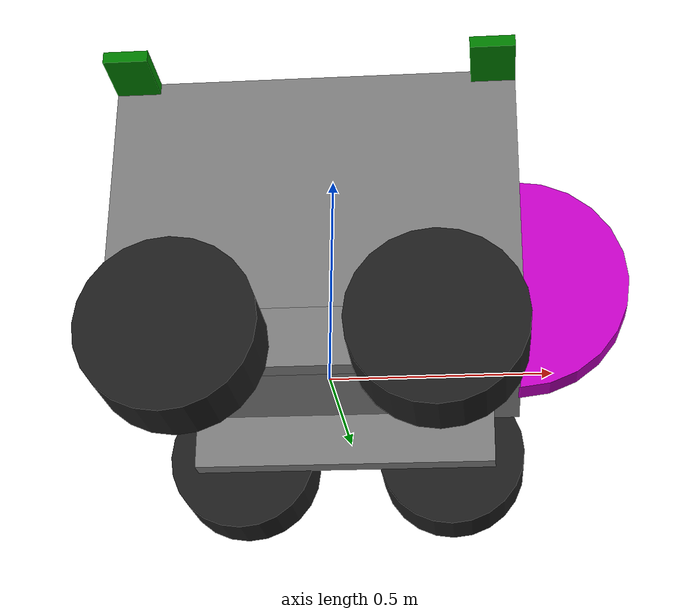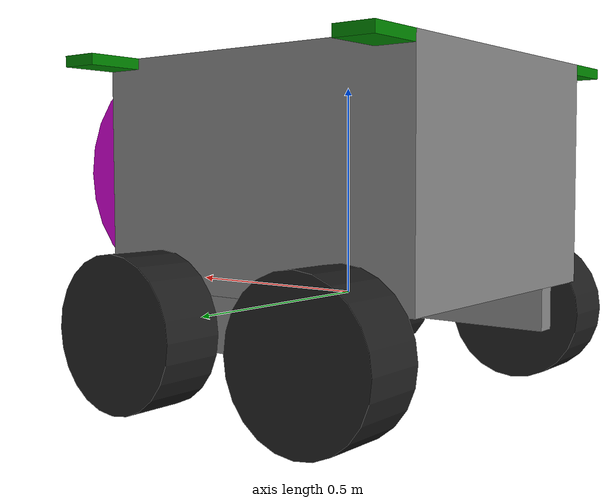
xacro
<?xml version="1.0" encoding="UTF-8"?>
<robot name="bigrdigr" xmlns:xacro="https://www.ros.org/wiki/xacro">
  <xacro:include filename="$(find bigrdigr_description)/urdf/wheel.urdf.xacro"/>
  <xacro:include filename="$(find bigrdigr_description)/urdf/sensors/camera.urdf.xacro"/>
  <xacro:include filename="$(find bigrdigr_description)/urdf/sensors/imu.urdf.xacro"/>
  <xacro:include filename="$(find bigrdigr_description)/urdf/extrusion.urdf.xacro"/>

  <material name="grey">
    <color rgba="0.5 0.5 0.5 1"/>
  </material>
  <material name="dark_grey">
    <color rgba="0.2 0.2 0.2 1"/>
  </material>
  <material name="blue">
    <color rgba="0 0 0.8 1"/>
  </material>
  <material name="red">
    <color rgba="0.8 0 0 1"/>
  </material>
  <material name="green">
    <color rgba="0 0.5 0 1"/>
  </material>
  <material name="purple">
    <color rgba="0.8 0 0.8 1"/>
  </material>
  <material name="orange">
    <color rgba="0.8 0.2 0 1"/>
  </material>
  <!-- Hard coded dimenstions well approximating robot -->
  <!-- red axis = x axis green axis = y blue axis = z -->
  <!-- Equation for inertial matrix of box/prisim -->
  <xacro:macro name="box_inertial_matrix" params="m l w h">
  	<inertia ixx="${(m*(w*w+h*h))/12.0}" ixy = "0.0" ixz = "0.0"
     				 iyy="${(m*(l*l+h*h))/12.0}" iyz = "0.0"
     				 izz="${(m*(l*l+w*w))/12.0}" />
  </xacro:macro>
  <!-- Equation for inertial matrix of cylinder (rotating around y axis) -->
  <xacro:macro name="cylinder_inertia" params="m r h">
  	<inertia ixx="${(m*(3*r*r+h*h))/12.0}" ixy = "0.0" ixz = "0.0"
     				 iyy="${m*r*r/2.0}"			   iyz = "0.0"
     				 izz="${(m*(3*r*r+h*h))/12.0}"  />
  </xacro:macro>

  <!-- Main dimensions: meters, kg, seconds, rads -->
  <xacro:property name="base_height" value="0.54" />
	<xacro:property name="base_length" value="0.864925" />
	<xacro:property name="base_width" value="0.740" />
	<xacro:property name="base_mass" value="72.0" />

  <xacro:property name="leg_height" value="0.127"/>
  <xacro:property name="leg_length" value="0.739775"/>
  <xacro:property name="leg_width" value="0.0508"/>
  <xacro:property name="leg_mass" value="4"/>

  <xacro:property name="leg_x_origin_to_axle" value="${leg_length/2-.10835}" />
	<xacro:property name="leg_y_origin_to_axle" value="0.0254" />
	<xacro:property name="leg_axle_height" value="0.10535" />

  <xacro:property name="drum_width" value="${wheel_width/2}"/>
  <xacro:property name="drum_radius" value="${wheel_radius*1.5}"/>
  <xacro:property name="drum_mass" value="2"/>
  <xacro:property name="drum_y_origin_to_base_origin" value="${base_width/4-drum_width/2}"/>

  <!-- World Origin -->
	<!-- world_origin is a fictitious link(frame) that is on the ground right below base_link origin -->
	<!-- z axis is height -->
	<link name="world_origin"/>
  <gazebo reference="world_origin">
		<turnGravityOff>false</turnGravityOff>
	</gazebo>

	<joint name="base_footprint_joint" type="fixed">
		<origin xyz="0 0 ${leg_height-leg_axle_height}" rpy="0 0 0" />
		<parent link="world_origin" />
		<child link="base_link" />
	</joint>

	<link name="base_link">
		<visual>
			<origin xyz="0 0 ${base_height/2.0}" rpy="0 0 0"/>
			<geometry>
				<box size=" ${base_length} ${base_width} ${base_height}" />
			</geometry>
			<material name="grey"/>
		</visual>

		<collision>
			<origin xyz="0 0 ${base_height/2.0}" rpy="0 0 0"/>
			<geometry>
				<box size="${base_length} ${base_width} ${base_width}"/>
			</geometry>
		</collision>

		<inertial>
			<origin xyz="0 0 ${base_height/2.0}" rpy="0 0 0"/>
			<mass value="${base_mass}"/>
			<box_inertial_matrix m="${base_mass}" h="${base_height}" l="${base_length}" w="${base_width}" />
		</inertial>
	</link>

  <gazebo reference="base_link">
    <material>Gazebo/Grey</material>
    <turnGravityOff>false</turnGravityOff>
  </gazebo>

  <joint name="left_leg_joint" type="fixed">
		<origin xyz="0 ${base_width/2-leg_width/2} ${-leg_height}" rpy="0 0 0" />
		<parent link="base_link" />
		<child link="left_leg" />
	</joint>

	<link name="left_leg">
		<visual>
			<origin xyz="0 0 ${leg_height/2.0}" rpy="0 0 0"/>
			<geometry>
				<box size=" ${leg_length} ${leg_width} ${leg_height}" />
			</geometry>
			<material name="grey"/>
		</visual>

		<collision>
			<origin xyz="0 0 ${leg_height/2.0}" rpy="0 0 0"/>
			<geometry>
				<box size="${leg_length} ${leg_width} ${leg_width}"/>
			</geometry>
		</collision>

		<inertial>
			<origin xyz="0 0 ${leg_height/2.0}" rpy="0 0 0"/>
			<mass value="${leg_mass}"/>
			<box_inertial_matrix m="${leg_mass}" h="${leg_height}" l="${leg_length}" w="${leg_width}" />
		</inertial>
	</link>

  <gazebo reference="left_leg">
    <material>Gazebo/Blue</material>
    <turnGravityOff>false</turnGravityOff>
  </gazebo>

  <joint name="right_leg_joint" type="fixed">
    <origin xyz="0 ${-base_width/2+leg_width/2} ${-leg_height}" rpy="0 0 0" />
    <parent link="base_link" />
    <child link="right_leg" />
  </joint>

  <link name="right_leg">
    <visual>
      <origin xyz="0 0 ${leg_height/2.0}" rpy="0 0 0"/>
      <geometry>
        <box size=" ${leg_length} ${leg_width} ${leg_height}" />
      </geometry>
      <material name="grey"/>
    </visual>

    <collision>
      <origin xyz="0 0 ${leg_height/2.0}" rpy="0 0 0"/>
      <geometry>
        <box size="${leg_length} ${leg_width} ${leg_width}"/>
      </geometry>
    </collision>

    <inertial>
      <origin xyz="0 0 ${leg_height/2.0}" rpy="0 0 0"/>
      <mass value="${leg_mass}"/>
      <box_inertial_matrix m="${leg_mass}" h="${leg_height}" l="${leg_length}" w="${leg_width}" />
    </inertial>
  </link>

  <gazebo reference="right_leg">
    <material>Gazebo/Blue</material>
    <turnGravityOff>false</turnGravityOff>
  </gazebo>

  <wheel prefix="front_left" leg="left_leg" x="1" y="1"/>
  <wheel prefix="front_right" leg="right_leg" x="1" y="-1"/>
  <wheel prefix="back_left" leg="left_leg" x="-1" y="1"/>
  <wheel prefix="back_right" leg="right_leg" x="-1" y="-1"/>

  <extrusion prefix="front_left" x="1" y="1"/>
  <extrusion prefix="front_right" x="1" y="-1"/>
  <extrusion prefix="back_left" x="-1" y="1"/>
  <extrusion prefix="back_right" x="-1" y="-1"/>

  <!-- imu and deca front left, back right. in front of extrusion -->
  <imu number="1"/>

  <joint name="drum_joint" type="prismatic">
		<origin xyz="${base_length/2} ${drum_y_origin_to_base_origin} ${base_height/2}" rpy="0 0 0" />
		<parent link="base_link" />
		<child link="drum" />

    <axis xyz="0 0 1"/>
    <dynamics damping="0.1" friction="0.1"/> <!-- get real Ns/m damping N friction -->
    <limit lower="${-base_length/2}" upper="${base_length/2}" effort="1000" velocity="10"/> <!-- m distance, max effort and vel -->
	</joint>

	<link name="drum">
		<visual>
			<origin xyz="0 ${drum_width/2} 0" rpy="${PI/2.0} 0 0"/>
			<geometry>
				<cylinder length="${drum_width}" radius="${drum_radius}" />
			</geometry>
			<material name="purple"/>
		</visual>

		<collision>
			<origin xyz="0 ${drum_width/2} 0" rpy="${PI/2.0} 0 0"/>
			<geometry>
				<cylinder length="${drum_width}" radius="${drum_radius}" />
			</geometry>
		</collision>

		<inertial>
			<origin xyz="${drum_radius/2} ${drum_width/2} 0" rpy="${PI/2.0} 0 0"/>
			<mass value="${leg_mass}"/>
			<cylinder_inertia m="${drum_mass}" r="${drum_radius}" h="${drum_width}"/>
		</inertial>
	</link>

  <transmission name="drum_trans">
    <type>transmission_interface/SimpleTransmission</type>
    <joint name="drum_joint">
      <hardwareInterface>hardware_interface/PositionJointInterface</hardwareInterface>
    </joint>
    <actuator name="drum_motor">
      <hardwareInterface>hardware_interface/PositionJointInterface</hardwareInterface>
      <mechanicalReduction>1</mechanicalReduction>
    </actuator>
  </transmission>

  <gazebo reference="drum">
    <material>Gazebo/Purple</material>
    <turnGravityOff>false</turnGravityOff>
  </gazebo>

	<gazebo>
	  <plugin name="skid_steer_drive_controller" filename="libgazebo_ros_skid_steer_drive.so">
	    <updateRate>100.0</updateRate>
	    <robotNamespace>/bigrdigr</robotNamespace>
			<commandTopic>cmd_vel</commandTopic>
			<odometryTopic>odometry/wheel</odometryTopic>
	    <leftFrontJoint>front_left_wheel_joint</leftFrontJoint>
	    <rightFrontJoint>front_right_wheel_joint</rightFrontJoint>
	    <leftRearJoint>back_left_wheel_joint</leftRearJoint>
	    <rightRearJoint>back_right_wheel_joint</rightRearJoint>
	    <wheelSeparation>${2*base_width}</wheelSeparation>
	    <wheelDiameter>${2*wheel_radius}</wheelDiameter>
	    <robotBaseFrame>base_link</robotBaseFrame>
	    <torque>20</torque>
	    <broadcastTF>true</broadcastTF>
			<legacyMode>false</legacyMode>
	  </plugin>
	</gazebo>

  <gazebo>
  <plugin name="gazebo_ros_control" filename="libgazebo_ros_control.so">
    <robotNamespace>/bigrdigr</robotNamespace>
    <robotSimType>gazebo_ros_control/DefaultRobotHWSim</robotSimType>
    <legacyMode>false</legacyMode>
  </plugin>
</gazebo>

</robot>

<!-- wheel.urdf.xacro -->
<robot name="bigrdigr" xmlns:xacro="https://www.ros.org/wiki/xacro">
	<!--here are a lot of the measurements. currently, all of them are just dummy values.
	change these later when it will be useful to do so.-->
	<!-- Main dimensions: meters, kg, seconds, rads -->
	<xacro:property name="PI" value="3.141592653589793238462643383279502884197" />
	<xacro:property name="wheel_width" value=".15" />
	<xacro:property name="wheel_radius" value=".18035" />
	<xacro:property name="wheel_mass" value="2" />

	<!--here is a macro for a wheel -->
	<xacro:macro name="wheel_link" params="prefix">
		<link name="${prefix}_wheel">
			<visual>
				<origin xyz="0 0 0" rpy="${PI/2.0} 0 0"/>
	      <geometry>
          <cylinder length="${wheel_width}" radius="${wheel_radius}" />
        </geometry>
        <material name="light_black"/>
			</visual>

	    <collision>
        <origin xyz="0 0 0" rpy="${PI/2.0} 0 0" />
        <geometry>
          <cylinder length="${wheel_width}" radius="${wheel_radius}" />
       	</geometry>
	    </collision>

	    <inertial>
       	<origin xyz="0 0 0" />
      	<mass value="${wheel_mass}" />
       	<cylinder_inertia m="${wheel_mass}" h="${wheel_width}" r="${wheel_radius}"/>
      </inertial>
		</link>
	</xacro:macro>

	<xacro:macro name="wheel_joint" params="prefix leg x y">
		<joint name="${prefix}_wheel_joint" type="continuous">
			<parent link="${leg}" />
			<child 	link="${prefix}_wheel" />
      <origin xyz="${x*leg_x_origin_to_axle} ${y*(wheel_radius/2+leg_width/4)} ${leg_axle_height-leg_height/2}" rpy="0 0 0"/>
      <dynamics damping="0.5" friction="0.1"/> <!-- get real later N*m*s/rad damp N*m friction-->
      <limit effort="1000" velocity="10"/> <!-- simmulate motors, max velocity and max joint effort -->
      <axis xyz="0 1 0"/> <!-- will rotate for y axis -->
    </joint>
	</xacro:macro>

	<xacro:macro name="wheel_gazebo" params="prefix">
		<gazebo reference="${prefix}_wheel">
			<mu1>0.3</mu1>
			<mu2>0.3</mu2>
			<kp>1000000.0</kp>
			<kd>1.0</kd>
			<minDepth>0.001</minDepth>
			<maxVel>1</maxVel>
			<fdir1>1 0 0</fdir1>
			<material>Gazebo/FlatBlack</material>
		</gazebo>
	</xacro:macro>

  <xacro:macro name="wheel_trans" params="prefix">
    <transmission name="${prefix}_wheel_trans">
      <type>transmission_interface/SimpleTransmission</type>
      <joint name="${prefix}_wheel_joint">
        <hardwareInterface>hardware_interface/EffortJointInterface</hardwareInterface>
      </joint>
      <actuator name="${prefix}_wheel_motor">
        <hardwareInterface>EffortJointInterface</hardwareInterface>
        <mechanicalReduction>1</mechanicalReduction>
      </actuator>
    </transmission>
  </xacro:macro>

	<xacro:macro name="wheel" params="prefix leg x y">
		<wheel_link prefix="${prefix}"/>
		<wheel_joint prefix="${prefix}" leg="${leg}" x="${x}" y="${y}"/>
		<wheel_gazebo prefix="${prefix}"/>
		<wheel_trans prefix="${prefix}"/>
	</xacro:macro>

</robot>

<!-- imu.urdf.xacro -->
<robot name="bigrdigr" xmlns:xacro="https://www.ros.org/wiki/xacro">

  <!-- Main dimensions: meters, kg, seconds, rads -->
  <xacro:property name="imu_length" value="0.025" />
  <xacro:property name="imu_width" value="0.025" />
  <xacro:property name="imu_height" value="0.01" />
  <xacro:property name="imu_visual" value="true"/>

  <xacro:macro name="imu_joint" params="number">
    <joint name="imu${number}_joint" type="fixed">
      <axis rpy="0 0 0" xyz="0 1 0"/>
      <parent link="base_link" />
      <child link="imu${number}_link" />
      <origin xyz="0 0 ${base_height + imu_height/2.0}" rpy="0 0 0" />
    </joint>
  </xacro:macro>

  <xacro:macro name="imu_link" params="number">
    <link name="imu${number}_link">
      <visual>
        <origin xyz="0 0 0" rpy="0 0 0" />
        <geometry>
          <box size="${imu_length} ${imu_width} ${imu_height}" />
        </geometry>
        <materal name="blue"/>
      </visual>

      <collision>
        <origin xyz="0 0 0" rpy="0 0 0" />
        <geometry>
          <box size="${imu_length} ${imu_width} ${imu_height}" />
        </geometry>
      </collision>
    </link>
  </xacro:macro>

  <xacro:macro name="imu_gazebo" params="number">
    <gazebo reference="imu${number}_link">
  		<gravity>true</gravity>
  		<sensor type="imu" name="imu${number}">
  			<always_on>true</always_on>
  			<update_rate>100</update_rate>
  			<visualize>${imu_visual}</visualize>
  			<topic>imu_data</topic>
  			<plugin filename="libgazebo_ros_imu_sensor.so" name="imu_plugin">
  				<topicName>imu${number}/data</topicName>
  				<bodyName>imu${number}_link</bodyName>
  				<updateRateHZ>10.0</updateRateHZ>
  				<gaussianNoise>0.0</gaussianNoise>
  				<xyzOffset>0 0 0</xyzOffset>
  				<rpyOffset>0 0 0</rpyOffset>
  				<frameName>imu${number}_link</frameName>
  			</plugin>
  			<pose>0 0 0 0 0 0</pose>
  		</sensor>
  		<material>Gazebo/Blue</material>
  	</gazebo>
  </xacro:macro>

  <xacro:macro name="imu" params="number">
    <imu_joint number="${number}"/>
    <imu_link number="${number}"/>
    <imu_gazebo number="${number}"/>
  </xacro:macro>

</robot>

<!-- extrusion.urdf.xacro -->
<robot name="bigrdigr" xmlns:xacro="https://www.ros.org/wiki/xacro">
  <!-- Main dimensions: meters, kg, seconds, rads -->
  <xacro:property name="extrusion_height" value="0.0254"/>
  <xacro:property name="extrusion_length" value="0.0946"/>
  <xacro:property name="extrusion_width" value="0.13254"/>
  <xacro:property name="extrusion_mass" value="0.5"/>

  <xacro:macro name="extrusion_joint" params="prefix x y">
    <joint name="${prefix}_extrusion_joint" type="fixed">
      <origin xyz="${x*(base_length/2-extrusion_length/2)} ${y*base_width/2} ${base_height-extrusion_height/2}" rpy="0 0 0"/>
      <parent link="base_link"/>
      <child link="${prefix}_extrusion"/>
  	</joint>
  </xacro:macro>

  <xacro:macro name="extrusion_link" params="prefix y">
  	<link name="${prefix}_extrusion">
  		<visual>
  			<origin xyz="0 ${y*extrusion_width/2} 0" rpy="0 0 0"/>
  			<geometry>
  				<box size=" ${extrusion_length} ${extrusion_width} ${extrusion_height}" />
  			</geometry>
  			<material name="green"/>
  		</visual>

  		<collision>
  			<origin xyz="0 ${y*extrusion_width/2} 0" rpy="0 0 0"/>
  			<geometry>
          <box size=" ${extrusion_length} ${extrusion_width} ${extrusion_height}" />
  			</geometry>
  		</collision>

  		<inertial>
  			<origin xyz="0 0 ${leg_height/2.0}" rpy="0 0 0"/>
  			<mass value="${leg_mass}"/>
  			<box_inertial_matrix m="${leg_mass}" h="${leg_height}" l="${leg_length}" w="${leg_width}" />
  		</inertial>
  	</link>
  </xacro:macro>

  <xacro:macro name="extrusion_gazebo" params="prefix">
    <gazebo reference="${prefix}_extrusion">
      <material>Gazebo/Green</material>
      <turnGravityOff>false</turnGravityOff>
    </gazebo>
  </xacro:macro>

  <xacro:macro name="extrusion" params="prefix x y">
    <extrusion_link prefix="${prefix}" y="${y}"/>
    <extrusion_joint prefix="${prefix}" x="${x}" y="${y}"/>
    <extrusion_gazebo prefix="${prefix}"/>
  </xacro:macro>

</robot>
